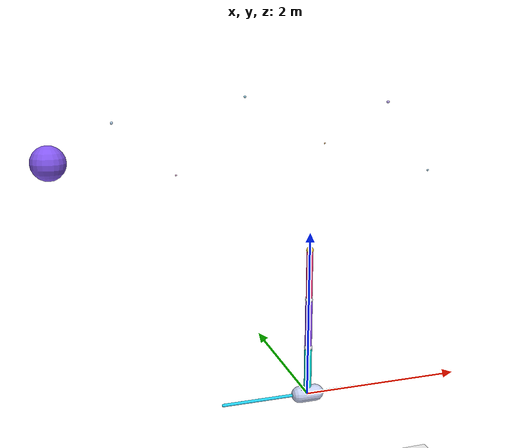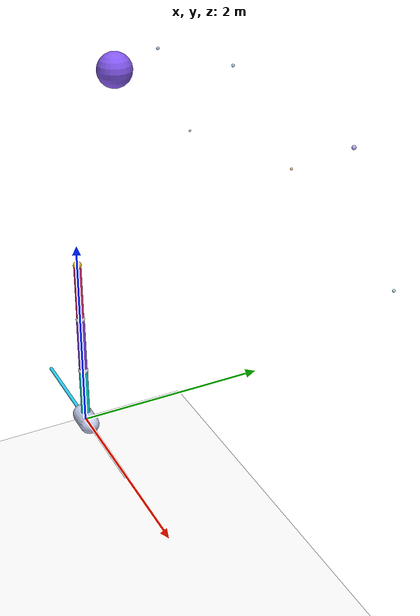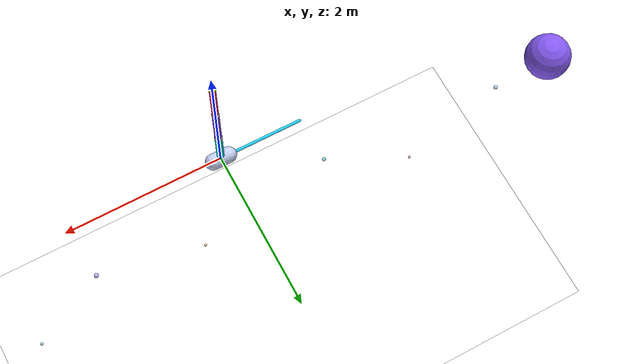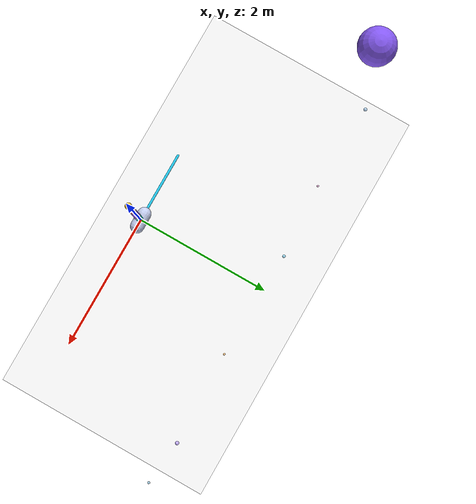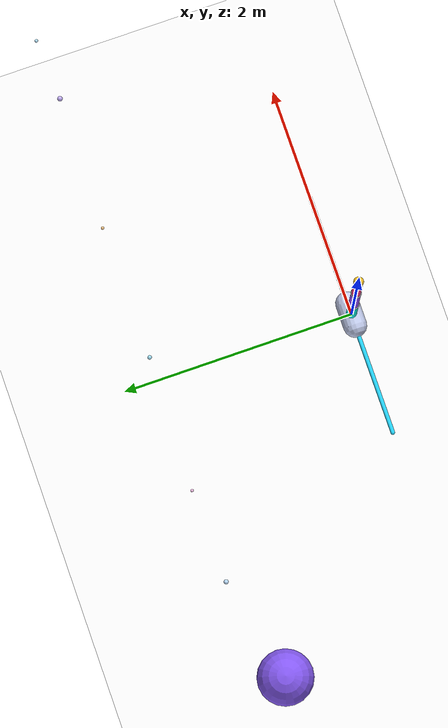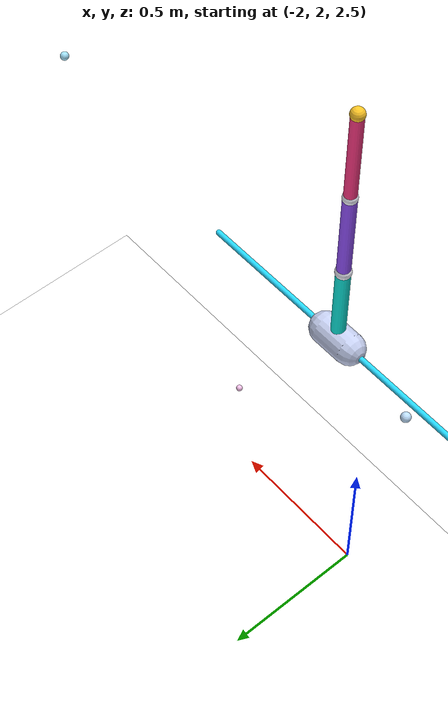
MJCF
<mujoco model="inverted_triple_pendulum">
  <compiler coordinate="local" inertiafromgeom="true"/>
  <custom>
    <numeric data="2" name="frame_skip"/>
  </custom>
  <default>
    <joint damping="0.05"/>
    <geom contype="0" friction="1 0.1 0.1" rgba="1 1 1 1"/>
  </default>
  <option gravity="0 0 -9.81" integrator="RK4" timestep="0.01"/>
  <size nstack="3000"/>

  <visual>
    <headlight ambient="0.45 0.45 0.50" diffuse="0.70 0.68 0.75" specular="0.15 0.15 0.18"/>
    <rgba haze="0.05 0.03 0.10 1"/>
    <quality shadowsize="2048" offsamples="4"/>
    <map znear="0.02"/>
    <global offwidth="1280" offheight="720"/>
  </visual>

  <asset>
    <!-- Midnight-indigo sky with a violet horizon glow. -->
    <texture type="skybox" builtin="gradient"
             rgb1="0.004 0.008 0.035" rgb2="0.26 0.035 0.30"
             width="512" height="3072"/>
    <texture name="floor_tex" type="2d" builtin="checker"
             rgb1="0.08 0.09 0.16" rgb2="0.04 0.05 0.10"
             width="512" height="512" mark="edge" markrgb="0.18 0.20 0.32"/>
    <material name="floor_mat" texture="floor_tex" texrepeat="10 10"
              reflectance="0.12" specular="0.25" shininess="0.15"/>
  </asset>

  <worldbody>
    <light name="key" pos="2 1.5 3.5" dir="-0.35 -0.3 -1"
           diffuse="0.9 0.85 1.0" specular="0.25 0.25 0.3" castshadow="true"/>
    <light name="fill" pos="-2 0 2.2" dir="0.5 0 -0.7"
           diffuse="0.25 0.35 0.55" specular="0.05 0.08 0.12" castshadow="false"/>
    <light name="rim" pos="0 2.2 1.2" dir="0 -0.9 -0.2"
           diffuse="0.45 0.18 0.55" specular="0.08 0.04 0.10" castshadow="false"/>

    <geom name="floor" type="plane" pos="0 0 -3.0" size="40 40 0.1" material="floor_mat"/>

    <!-- Decorative, non-colliding sky details.  They live far from the
         apparatus and have contype/conaffinity disabled, so they cannot alter
         contacts, dynamics, observations, or rewards. -->
    <geom name="moon" type="sphere" pos="-2.8 1.6 2.7" size="0.22"
          rgba="0.52 0.35 0.95 1" contype="0" conaffinity="0"/>
    <geom name="star_1" type="sphere" pos="-2.0 1.8 3.15" size="0.018"
          rgba="0.75 0.88 1 1" contype="0" conaffinity="0"/>
    <geom name="star_2" type="sphere" pos="-1.2 1.8 2.45" size="0.012"
          rgba="1 0.78 0.95 1" contype="0" conaffinity="0"/>
    <geom name="star_3" type="sphere" pos="-0.25 1.8 3.45" size="0.016"
          rgba="0.65 0.9 1 1" contype="0" conaffinity="0"/>
    <geom name="star_4" type="sphere" pos="0.9 1.8 2.8" size="0.012"
          rgba="1 0.8 0.55 1" contype="0" conaffinity="0"/>
    <geom name="star_5" type="sphere" pos="1.85 1.8 3.35" size="0.02"
          rgba="0.78 0.7 1 1" contype="0" conaffinity="0"/>
    <geom name="star_6" type="sphere" pos="2.55 1.8 2.35" size="0.014"
          rgba="0.72 0.9 1 1" contype="0" conaffinity="0"/>

    <!-- Neon cyan rail -->
    <geom name="rail" type="capsule" pos="0 0 0" quat="0.707 0 0.707 0"
          size="0.018 1.05" rgba="0.15 0.85 1.0 1"/>

    <body name="cart" pos="0 0 0">
      <joint axis="1 0 0" limited="true" margin="0.01" name="slider"
             pos="0 0 0" range="-1 1" type="slide"/>
      <!-- Soft silver-lavender cart -->
      <geom name="cart" type="capsule" pos="0 0 0" quat="0.707 0 0.707 0"
            size="0.10 0.10" rgba="0.78 0.82 0.95 1"/>
      <geom name="cart_core" type="sphere" pos="0 0 0" size="0.042"
            rgba="0.55 0.40 0.95 1" contype="0" conaffinity="0"/>

      <body name="pole" pos="0 0 0">
        <joint axis="0 1 0" name="hinge" pos="0 0 0" type="hinge"/>
        <!-- Pole 1: electric cyan -->
        <geom name="cpole" type="capsule" fromto="0 0 0 0 0 0.6"
              size="0.045" rgba="0.05 0.92 0.88 1"/>
        <geom name="joint1" type="sphere" pos="0 0 0" size="0.055"
              rgba="0.95 0.95 1.0 1" contype="0" conaffinity="0"/>

        <body name="pole2" pos="0 0 0.6">
          <joint axis="0 1 0" name="hinge2" pos="0 0 0" type="hinge"/>
          <!-- Pole 2: electric violet -->
          <geom name="cpole2" type="capsule" fromto="0 0 0 0 0 0.6"
                size="0.042" rgba="0.58 0.32 1.0 1"/>
          <geom name="joint2" type="sphere" pos="0 0 0" size="0.050"
                rgba="0.95 0.95 1.0 1" contype="0" conaffinity="0"/>

          <body name="pole3" pos="0 0 0.6">
            <joint axis="0 1 0" name="hinge3" pos="0 0 0" type="hinge"/>
            <!-- Pole 3: hot magenta/rose -->
            <geom name="cpole3" type="capsule" fromto="0 0 0 0 0 0.6"
                  size="0.038" rgba="1.0 0.22 0.52 1"/>
            <geom name="joint3" type="sphere" pos="0 0 0" size="0.045"
                  rgba="0.95 0.95 1.0 1" contype="0" conaffinity="0"/>
            <!-- Free tip (used for reward / termination) + gold jewel -->
            <site name="tip" pos="0 0 0.6" size="0.01 0.01"/>
            <geom name="tip_jewel" type="sphere" pos="0 0 0.6" size="0.042"
                  rgba="1.0 0.78 0.15 1" contype="0" conaffinity="0"/>
          </body>
        </body>
      </body>
    </body>
  </worldbody>

  <actuator>
    <motor ctrllimited="true" ctrlrange="-1 1" gear="500" joint="slider" name="slide"/>
  </actuator>
</mujoco>
